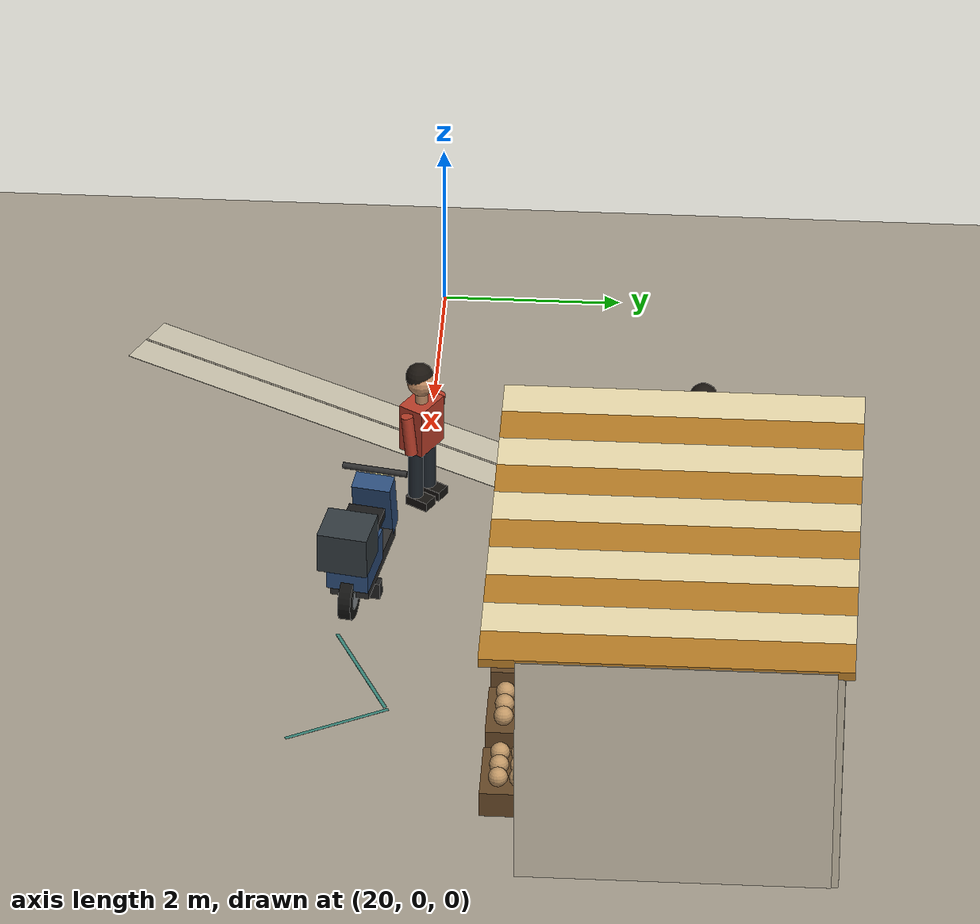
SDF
<sdf version="1.10">
 <world name="swan_market">
  <model name="ground">
   <static>true</static>
   <pose>15 0 -0.1 0 0 0</pose>
   <link name="body">
    <collision name="box_collision"><geometry><box><size>46 24 0.2</size></box></geometry></collision>
    <visual name="box_visual">
     <geometry><box><size>46 24 0.2</size></box></geometry>
     <material><ambient>0.64 0.61 0.55 1</ambient><diffuse>0.64 0.61 0.55 1</diffuse></material>
    </visual>
   </link>
  </model>
  <model name="market_paving_48">
   <static>true</static>
   <pose>22.25 -1.0326 0.002 0 0 -0.48375</pose>
   <link name="body">
    <visual name="box_visual">
     <geometry><box><size>0.75 5.2 0.004</size></box></geometry>
     <material><ambient>0.79 0.76 0.68 1</ambient><diffuse>0.79 0.76 0.68 1</diffuse></material>
    </visual>
   </link>
  </model>
  <model name="paving_joint_48">
   <static>true</static>
   <pose>22.25 -1.0326 0.0045 0 0 -0.48375</pose>
   <link name="body">
    <visual name="box_visual">
     <geometry><box><size>0.025 5.2 0.001</size></box></geometry>
     <material><ambient>0.67 0.64 0.57 1</ambient><diffuse>0.67 0.64 0.57 1</diffuse></material>
    </visual>
   </link>
  </model>
  <model name="stall_03">
   <static>true</static>
   <pose>28 3.0211 0 0 0 0</pose>
   <link name="body">
    <collision name="rear_collision">
     <pose>0 1.65 1.4 0 0 0</pose>
     <geometry><box><size>4.8 0.15 2.8</size></box></geometry>
    </collision>
    <visual name="rear_visual">
     <pose>0 1.65 1.4 0 0 0</pose>
     <geometry><box><size>4.8 0.15 2.8</size></box></geometry>
     <material><ambient>0.78 0.74 0.65 1</ambient><diffuse>0.78 0.74 0.65 1</diffuse></material>
    </visual>
    <collision name="side_-2.35_collision">
     <pose>-2.35 0 1.4 0 0 0</pose>
     <geometry><box><size>0.12 3.3 2.8</size></box></geometry>
    </collision>
    <visual name="side_-2.35_visual">
     <pose>-2.35 0 1.4 0 0 0</pose>
     <geometry><box><size>0.12 3.3 2.8</size></box></geometry>
     <material><ambient>0.81 0.77 0.69 1</ambient><diffuse>0.81 0.77 0.69 1</diffuse></material>
    </visual>
    <collision name="side_2.35_collision">
     <pose>2.35 0 1.4 0 0 0</pose>
     <geometry><box><size>0.12 3.3 2.8</size></box></geometry>
    </collision>
    <visual name="side_2.35_visual">
     <pose>2.35 0 1.4 0 0 0</pose>
     <geometry><box><size>0.12 3.3 2.8</size></box></geometry>
     <material><ambient>0.81 0.77 0.69 1</ambient><diffuse>0.81 0.77 0.69 1</diffuse></material>
    </visual>
    <collision name="counter_collision">
     <pose>0 -1.22 0.4 0 0 0</pose>
     <geometry><box><size>3.5 0.85 0.8</size></box></geometry>
    </collision>
    <visual name="counter_visual">
     <pose>0 -1.22 0.4 0 0 0</pose>
     <geometry><box><size>3.5 0.85 0.8</size></box></geometry>
     <material><ambient>0.47 0.32 0.21 1</ambient><diffuse>0.47 0.32 0.21 1</diffuse></material>
    </visual>
    <collision name="counter_top_collision">
     <pose>0 -1.22 0.83 0 0 0</pose>
     <geometry><box><size>3.6 0.95 0.06</size></box></geometry>
    </collision>
    <visual name="counter_top_visual">
     <pose>0 -1.22 0.83 0 0 0</pose>
     <geometry><box><size>3.6 0.95 0.06</size></box></geometry>
     <material><ambient>0.86 0.77 0.59 1</ambient><diffuse>0.86 0.77 0.59 1</diffuse></material>
    </visual>
    <collision name="awning_0_collision">
     <pose>-2.16 -0.1 2.78 0 0 0</pose>
     <geometry><box><size>0.48 3.85 0.1</size></box></geometry>
    </collision>
    <visual name="awning_0_visual">
     <pose>-2.16 -0.1 2.78 0 0 0</pose>
     <geometry><box><size>0.48 3.85 0.1</size></box></geometry>
     <material><ambient>0.92 0.86 0.68 1</ambient><diffuse>0.92 0.86 0.68 1</diffuse></material>
    </visual>
    <collision name="awning_1_collision">
     <pose>-1.68 -0.1 2.78 0 0 0</pose>
     <geometry><box><size>0.48 3.85 0.1</size></box></geometry>
    </collision>
    <visual name="awning_1_visual">
     <pose>-1.68 -0.1 2.78 0 0 0</pose>
     <geometry><box><size>0.48 3.85 0.1</size></box></geometry>
     <material><ambient>0.72 0.49 0.15 1</ambient><diffuse>0.72 0.49 0.15 1</diffuse></material>
    </visual>
    <collision name="awning_2_collision">
     <pose>-1.2 -0.1 2.78 0 0 0</pose>
     <geometry><box><size>0.48 3.85 0.1</size></box></geometry>
    </collision>
    <visual name="awning_2_visual">
     <pose>-1.2 -0.1 2.78 0 0 0</pose>
     <geometry><box><size>0.48 3.85 0.1</size></box></geometry>
     <material><ambient>0.92 0.86 0.68 1</ambient><diffuse>0.92 0.86 0.68 1</diffuse></material>
    </visual>
    <collision name="awning_3_collision">
     <pose>-0.72 -0.1 2.78 0 0 0</pose>
     <geometry><box><size>0.48 3.85 0.1</size></box></geometry>
    </collision>
    <visual name="awning_3_visual">
     <pose>-0.72 -0.1 2.78 0 0 0</pose>
     <geometry><box><size>0.48 3.85 0.1</size></box></geometry>
     <material><ambient>0.72 0.49 0.15 1</ambient><diffuse>0.72 0.49 0.15 1</diffuse></material>
    </visual>
    <collision name="awning_4_collision">
     <pose>-0.24 -0.1 2.78 0 0 0</pose>
     <geometry><box><size>0.48 3.85 0.1</size></box></geometry>
    </collision>
    <visual name="awning_4_visual">
     <pose>-0.24 -0.1 2.78 0 0 0</pose>
     <geometry><box><size>0.48 3.85 0.1</size></box></geometry>
     <material><ambient>0.92 0.86 0.68 1</ambient><diffuse>0.92 0.86 0.68 1</diffuse></material>
    </visual>
    <collision name="awning_5_collision">
     <pose>0.24 -0.1 2.78 0 0 0</pose>
     <geometry><box><size>0.48 3.85 0.1</size></box></geometry>
    </collision>
    <visual name="awning_5_visual">
     <pose>0.24 -0.1 2.78 0 0 0</pose>
     <geometry><box><size>0.48 3.85 0.1</size></box></geometry>
     <material><ambient>0.72 0.49 0.15 1</ambient><diffuse>0.72 0.49 0.15 1</diffuse></material>
    </visual>
    <collision name="awning_6_collision">
     <pose>0.72 -0.1 2.78 0 0 0</pose>
     <geometry><box><size>0.48 3.85 0.1</size></box></geometry>
    </collision>
    <visual name="awning_6_visual">
     <pose>0.72 -0.1 2.78 0 0 0</pose>
     <geometry><box><size>0.48 3.85 0.1</size></box></geometry>
     <material><ambient>0.92 0.86 0.68 1</ambient><diffuse>0.92 0.86 0.68 1</diffuse></material>
    </visual>
    <collision name="awning_7_collision">
     <pose>1.2 -0.1 2.78 0 0 0</pose>
     <geometry><box><size>0.48 3.85 0.1</size></box></geometry>
    </collision>
    <visual name="awning_7_visual">
     <pose>1.2 -0.1 2.78 0 0 0</pose>
     <geometry><box><size>0.48 3.85 0.1</size></box></geometry>
     <material><ambient>0.72 0.49 0.15 1</ambient><diffuse>0.72 0.49 0.15 1</diffuse></material>
    </visual>
    <collision name="awning_8_collision">
     <pose>1.68 -0.1 2.78 0 0 0</pose>
     <geometry><box><size>0.48 3.85 0.1</size></box></geometry>
    </collision>
    <visual name="awning_8_visual">
     <pose>1.68 -0.1 2.78 0 0 0</pose>
     <geometry><box><size>0.48 3.85 0.1</size></box></geometry>
     <material><ambient>0.92 0.86 0.68 1</ambient><diffuse>0.92 0.86 0.68 1</diffuse></material>
    </visual>
    <collision name="awning_9_collision">
     <pose>2.16 -0.1 2.78 0 0 0</pose>
     <geometry><box><size>0.48 3.85 0.1</size></box></geometry>
    </collision>
    <visual name="awning_9_visual">
     <pose>2.16 -0.1 2.78 0 0 0</pose>
     <geometry><box><size>0.48 3.85 0.1</size></box></geometry>
     <material><ambient>0.72 0.49 0.15 1</ambient><diffuse>0.72 0.49 0.15 1</diffuse></material>
    </visual>
    <collision name="crate_-1_collision">
     <pose>-1.04 -1.77 0.15 0 0 0</pose>
     <geometry><box><size>0.78 0.6 0.3</size></box></geometry>
    </collision>
    <visual name="crate_-1_visual">
     <pose>-1.04 -1.77 0.15 0 0 0</pose>
     <geometry><box><size>0.78 0.6 0.3</size></box></geometry>
     <material><ambient>0.4 0.28 0.15 1</ambient><diffuse>0.4 0.28 0.15 1</diffuse></material>
    </visual>
    <visual name="produce_-1_0_visual">
     <pose>-1.25 -1.88 0.39 0 0 0</pose>
     <geometry><sphere><radius>0.105</radius></sphere></geometry>
     <material><ambient>0.74 0.58 0.39 1</ambient><diffuse>0.74 0.58 0.39 1</diffuse></material>
    </visual>
    <visual name="produce_-1_1_visual">
     <pose>-1.04 -1.88 0.39 0 0 0</pose>
     <geometry><sphere><radius>0.105</radius></sphere></geometry>
     <material><ambient>0.74 0.58 0.39 1</ambient><diffuse>0.74 0.58 0.39 1</diffuse></material>
    </visual>
    <visual name="produce_-1_2_visual">
     <pose>-0.83 -1.88 0.39 0 0 0</pose>
     <geometry><sphere><radius>0.105</radius></sphere></geometry>
     <material><ambient>0.74 0.58 0.39 1</ambient><diffuse>0.74 0.58 0.39 1</diffuse></material>
    </visual>
    <visual name="produce_-1_3_visual">
     <pose>-1.25 -1.66 0.39 0 0 0</pose>
     <geometry><sphere><radius>0.105</radius></sphere></geometry>
     <material><ambient>0.74 0.58 0.39 1</ambient><diffuse>0.74 0.58 0.39 1</diffuse></material>
    </visual>
    <visual name="produce_-1_4_visual">
     <pose>-1.04 -1.66 0.39 0 0 0</pose>
     <geometry><sphere><radius>0.105</radius></sphere></geometry>
     <material><ambient>0.74 0.58 0.39 1</ambient><diffuse>0.74 0.58 0.39 1</diffuse></material>
    </visual>
    <visual name="produce_-1_5_visual">
     <pose>-0.83 -1.66 0.39 0 0 0</pose>
     <geometry><sphere><radius>0.105</radius></sphere></geometry>
     <material><ambient>0.74 0.58 0.39 1</ambient><diffuse>0.74 0.58 0.39 1</diffuse></material>
    </visual>
    <collision name="crate_0_collision">
     <pose>0 -1.77 0.15 0 0 0</pose>
     <geometry><box><size>0.78 0.6 0.3</size></box></geometry>
    </collision>
    <visual name="crate_0_visual">
     <pose>0 -1.77 0.15 0 0 0</pose>
     <geometry><box><size>0.78 0.6 0.3</size></box></geometry>
     <material><ambient>0.4 0.28 0.15 1</ambient><diffuse>0.4 0.28 0.15 1</diffuse></material>
    </visual>
    <visual name="produce_0_0_visual">
     <pose>-0.21 -1.88 0.39 0 0 0</pose>
     <geometry><sphere><radius>0.105</radius></sphere></geometry>
     <material><ambient>0.74 0.58 0.39 1</ambient><diffuse>0.74 0.58 0.39 1</diffuse></material>
    </visual>
    <visual name="produce_0_1_visual">
     <pose>0 -1.88 0.39 0 0 0</pose>
     <geometry><sphere><radius>0.105</radius></sphere></geometry>
     <material><ambient>0.74 0.58 0.39 1</ambient><diffuse>0.74 0.58 0.39 1</diffuse></material>
    </visual>
    <visual name="produce_0_2_visual">
     <pose>0.21 -1.88 0.39 0 0 0</pose>
     <geometry><sphere><radius>0.105</radius></sphere></geometry>
     <material><ambient>0.74 0.58 0.39 1</ambient><diffuse>0.74 0.58 0.39 1</diffuse></material>
    </visual>
    <visual name="produce_0_3_visual">
     <pose>-0.21 -1.66 0.39 0 0 0</pose>
     <geometry><sphere><radius>0.105</radius></sphere></geometry>
     <material><ambient>0.74 0.58 0.39 1</ambient><diffuse>0.74 0.58 0.39 1</diffuse></material>
    </visual>
    <visual name="produce_0_4_visual">
     <pose>0 -1.66 0.39 0 0 0</pose>
     <geometry><sphere><radius>0.105</radius></sphere></geometry>
     <material><ambient>0.74 0.58 0.39 1</ambient><diffuse>0.74 0.58 0.39 1</diffuse></material>
    </visual>
    <visual name="produce_0_5_visual">
     <pose>0.21 -1.66 0.39 0 0 0</pose>
     <geometry><sphere><radius>0.105</radius></sphere></geometry>
     <material><ambient>0.74 0.58 0.39 1</ambient><diffuse>0.74 0.58 0.39 1</diffuse></material>
    </visual>
    <collision name="crate_1_collision">
     <pose>1.04 -1.77 0.15 0 0 0</pose>
     <geometry><box><size>0.78 0.6 0.3</size></box></geometry>
    </collision>
    <visual name="crate_1_visual">
     <pose>1.04 -1.77 0.15 0 0 0</pose>
     <geometry><box><size>0.78 0.6 0.3</size></box></geometry>
     <material><ambient>0.4 0.28 0.15 1</ambient><diffuse>0.4 0.28 0.15 1</diffuse></material>
    </visual>
    <visual name="produce_1_0_visual">
     <pose>0.83 -1.88 0.39 0 0 0</pose>
     <geometry><sphere><radius>0.105</radius></sphere></geometry>
     <material><ambient>0.74 0.58 0.39 1</ambient><diffuse>0.74 0.58 0.39 1</diffuse></material>
    </visual>
    <visual name="produce_1_1_visual">
     <pose>1.04 -1.88 0.39 0 0 0</pose>
     <geometry><sphere><radius>0.105</radius></sphere></geometry>
     <material><ambient>0.74 0.58 0.39 1</ambient><diffuse>0.74 0.58 0.39 1</diffuse></material>
    </visual>
    <visual name="produce_1_2_visual">
     <pose>1.25 -1.88 0.39 0 0 0</pose>
     <geometry><sphere><radius>0.105</radius></sphere></geometry>
     <material><ambient>0.74 0.58 0.39 1</ambient><diffuse>0.74 0.58 0.39 1</diffuse></material>
    </visual>
    <visual name="produce_1_3_visual">
     <pose>0.83 -1.66 0.39 0 0 0</pose>
     <geometry><sphere><radius>0.105</radius></sphere></geometry>
     <material><ambient>0.74 0.58 0.39 1</ambient><diffuse>0.74 0.58 0.39 1</diffuse></material>
    </visual>
    <visual name="produce_1_4_visual">
     <pose>1.04 -1.66 0.39 0 0 0</pose>
     <geometry><sphere><radius>0.105</radius></sphere></geometry>
     <material><ambient>0.74 0.58 0.39 1</ambient><diffuse>0.74 0.58 0.39 1</diffuse></material>
    </visual>
    <visual name="produce_1_5_visual">
     <pose>1.25 -1.66 0.39 0 0 0</pose>
     <geometry><sphere><radius>0.105</radius></sphere></geometry>
     <material><ambient>0.74 0.58 0.39 1</ambient><diffuse>0.74 0.58 0.39 1</diffuse></material>
    </visual>
   </link>
  </model>
  <model name="vendor_2">
   <static>true</static>
   <pose>24.024 3.06 0 0 0 -2.0431</pose>
   <link name="body">
    <collision name="leg_-1_collision">
     <pose>0 -0.12 0.4 0 0 0</pose>
     <geometry><cylinder><radius>0.085</radius><length>0.68</length></cylinder></geometry>
    </collision>
    <visual name="leg_-1_visual">
     <pose>0 -0.12 0.4 0 0 0</pose>
     <geometry><cylinder><radius>0.085</radius><length>0.68</length></cylinder></geometry>
     <material><ambient>0.12 0.15 0.18 1</ambient><diffuse>0.12 0.15 0.18 1</diffuse></material>
    </visual>
    <collision name="shoe_-1_collision">
     <pose>0.06 -0.12 0.055 0 0 0</pose>
     <geometry><box><size>0.28 0.17 0.11</size></box></geometry>
    </collision>
    <visual name="shoe_-1_visual">
     <pose>0.06 -0.12 0.055 0 0 0</pose>
     <geometry><box><size>0.28 0.17 0.11</size></box></geometry>
     <material><ambient>0.08 0.07 0.06 1</ambient><diffuse>0.08 0.07 0.06 1</diffuse></material>
    </visual>
    <collision name="arm_-1_collision">
     <pose>0.02 -0.27 1.02 0 -0.12 0</pose>
     <geometry><cylinder><radius>0.068</radius><length>0.48</length></cylinder></geometry>
    </collision>
    <visual name="arm_-1_visual">
     <pose>0.02 -0.27 1.02 0 -0.12 0</pose>
     <geometry><cylinder><radius>0.068</radius><length>0.48</length></cylinder></geometry>
     <material><ambient>0.79 0.69 0.48 1</ambient><diffuse>0.79 0.69 0.48 1</diffuse></material>
    </visual>
    <collision name="leg_1_collision">
     <pose>0 0.12 0.4 0 0 0</pose>
     <geometry><cylinder><radius>0.085</radius><length>0.68</length></cylinder></geometry>
    </collision>
    <visual name="leg_1_visual">
     <pose>0 0.12 0.4 0 0 0</pose>
     <geometry><cylinder><radius>0.085</radius><length>0.68</length></cylinder></geometry>
     <material><ambient>0.12 0.15 0.18 1</ambient><diffuse>0.12 0.15 0.18 1</diffuse></material>
    </visual>
    <collision name="shoe_1_collision">
     <pose>0.06 0.12 0.055 0 0 0</pose>
     <geometry><box><size>0.28 0.17 0.11</size></box></geometry>
    </collision>
    <visual name="shoe_1_visual">
     <pose>0.06 0.12 0.055 0 0 0</pose>
     <geometry><box><size>0.28 0.17 0.11</size></box></geometry>
     <material><ambient>0.08 0.07 0.06 1</ambient><diffuse>0.08 0.07 0.06 1</diffuse></material>
    </visual>
    <collision name="arm_1_collision">
     <pose>0.02 0.27 1.02 0 0.12 0</pose>
     <geometry><cylinder><radius>0.068</radius><length>0.48</length></cylinder></geometry>
    </collision>
    <visual name="arm_1_visual">
     <pose>0.02 0.27 1.02 0 0.12 0</pose>
     <geometry><cylinder><radius>0.068</radius><length>0.48</length></cylinder></geometry>
     <material><ambient>0.79 0.69 0.48 1</ambient><diffuse>0.79 0.69 0.48 1</diffuse></material>
    </visual>
    <collision name="torso_collision">
     <pose>0 0 1.02 0 0 0</pose>
     <geometry><box><size>0.3 0.43 0.58</size></box></geometry>
    </collision>
    <visual name="torso_visual">
     <pose>0 0 1.02 0 0 0</pose>
     <geometry><box><size>0.3 0.43 0.58</size></box></geometry>
     <material><ambient>0.79 0.69 0.48 1</ambient><diffuse>0.79 0.69 0.48 1</diffuse></material>
    </visual>
    <visual name="neck_visual">
     <pose>0 0 1.37 0 0 0</pose>
     <geometry><cylinder><radius>0.07</radius><length>0.13</length></cylinder></geometry>
     <material><ambient>0.77 0.56 0.4 1</ambient><diffuse>0.77 0.56 0.4 1</diffuse></material>
    </visual>
    <collision name="head_collision">
     <pose>0 0 1.57 0 0 0</pose>
     <geometry><sphere><radius>0.16</radius></sphere></geometry>
    </collision>
    <visual name="head_visual">
     <pose>0 0 1.57 0 0 0</pose>
     <geometry><sphere><radius>0.16</radius></sphere></geometry>
     <material><ambient>0.77 0.56 0.4 1</ambient><diffuse>0.77 0.56 0.4 1</diffuse></material>
    </visual>
    <visual name="hair_visual">
     <pose>-0.025 0 1.63 0 0 0</pose>
     <geometry><sphere><radius>0.155</radius></sphere></geometry>
     <material><ambient>0.1 0.08 0.06 1</ambient><diffuse>0.1 0.08 0.06 1</diffuse></material>
    </visual>
   </link>
  </model>
  <model name="motorcycle_parked">
   <static>true</static>
   <pose>25.448 -0.54924 0 0 0 2.9627</pose>
   <link name="body">
    <collision name="tire_0_collision">
     <pose>-0.61 0 0.25 1.5708 0 0</pose>
     <geometry><cylinder><radius>0.25</radius><length>0.14</length></cylinder></geometry>
    </collision>
    <visual name="tire_0_visual">
     <pose>-0.61 0 0.25 1.5708 0 0</pose>
     <geometry><cylinder><radius>0.25</radius><length>0.14</length></cylinder></geometry>
     <material><ambient>0.075 0.075 0.07 1</ambient><diffuse>0.075 0.075 0.07 1</diffuse></material>
    </visual>
    <visual name="hub_0_visual">
     <pose>-0.61 0 0.25 1.5708 0 0</pose>
     <geometry><cylinder><radius>0.13</radius><length>0.145</length></cylinder></geometry>
     <material><ambient>0.57 0.59 0.6 1</ambient><diffuse>0.57 0.59 0.6 1</diffuse></material>
    </visual>
    <collision name="tire_1_collision">
     <pose>0.62 0 0.25 1.5708 0 0</pose>
     <geometry><cylinder><radius>0.25</radius><length>0.14</length></cylinder></geometry>
    </collision>
    <visual name="tire_1_visual">
     <pose>0.62 0 0.25 1.5708 0 0</pose>
     <geometry><cylinder><radius>0.25</radius><length>0.14</length></cylinder></geometry>
     <material><ambient>0.075 0.075 0.07 1</ambient><diffuse>0.075 0.075 0.07 1</diffuse></material>
    </visual>
    <visual name="hub_1_visual">
     <pose>0.62 0 0.25 1.5708 0 0</pose>
     <geometry><cylinder><radius>0.13</radius><length>0.145</length></cylinder></geometry>
     <material><ambient>0.57 0.59 0.6 1</ambient><diffuse>0.57 0.59 0.6 1</diffuse></material>
    </visual>
    <collision name="deck_collision">
     <pose>0 0 0.33 0 0 0</pose>
     <geometry><box><size>1.2 0.43 0.17</size></box></geometry>
    </collision>
    <visual name="deck_visual">
     <pose>0 0 0.33 0 0 0</pose>
     <geometry><box><size>1.2 0.43 0.17</size></box></geometry>
     <material><ambient>0.18 0.18 0.18 1</ambient><diffuse>0.18 0.18 0.18 1</diffuse></material>
    </visual>
    <collision name="rear_body_collision">
     <pose>-0.36 0 0.59 0 0 0</pose>
     <geometry><box><size>0.65 0.46 0.4</size></box></geometry>
    </collision>
    <visual name="rear_body_visual">
     <pose>-0.36 0 0.59 0 0 0</pose>
     <geometry><box><size>0.65 0.46 0.4</size></box></geometry>
     <material><ambient>0.17 0.3 0.48 1</ambient><diffuse>0.17 0.3 0.48 1</diffuse></material>
    </visual>
    <collision name="seat_collision">
     <pose>-0.2 0 0.83 0 0 0</pose>
     <geometry><box><size>0.8 0.4 0.12</size></box></geometry>
    </collision>
    <visual name="seat_visual">
     <pose>-0.2 0 0.83 0 0 0</pose>
     <geometry><box><size>0.8 0.4 0.12</size></box></geometry>
     <material><ambient>0.1 0.1 0.1 1</ambient><diffuse>0.1 0.1 0.1 1</diffuse></material>
    </visual>
    <collision name="front_fairing_collision">
     <pose>0.53 0 0.69 0 -0.2 0</pose>
     <geometry><box><size>0.23 0.43 0.69</size></box></geometry>
    </collision>
    <visual name="front_fairing_visual">
     <pose>0.53 0 0.69 0 -0.2 0</pose>
     <geometry><box><size>0.23 0.43 0.69</size></box></geometry>
     <material><ambient>0.17 0.3 0.48 1</ambient><diffuse>0.17 0.3 0.48 1</diffuse></material>
    </visual>
    <collision name="handlebar_collision">
     <pose>0.56 0 1.12 1.5708 0 0</pose>
     <geometry><cylinder><radius>0.035</radius><length>0.72</length></cylinder></geometry>
    </collision>
    <visual name="handlebar_visual">
     <pose>0.56 0 1.12 1.5708 0 0</pose>
     <geometry><cylinder><radius>0.035</radius><length>0.72</length></cylinder></geometry>
     <material><ambient>0.18 0.18 0.18 1</ambient><diffuse>0.18 0.18 0.18 1</diffuse></material>
    </visual>
    <visual name="headlight_visual">
     <pose>0.7 0 0.94 0 0 0</pose>
     <geometry><sphere><radius>0.095</radius></sphere></geometry>
     <material><ambient>0.96 0.92 0.66 1</ambient><diffuse>0.96 0.92 0.66 1</diffuse></material>
    </visual>
    <collision name="delivery_box_collision">
     <pose>-0.65 0 1.01 0 0 0</pose>
     <geometry><box><size>0.51 0.55 0.48</size></box></geometry>
    </collision>
    <visual name="delivery_box_visual">
     <pose>-0.65 0 1.01 0 0 0</pose>
     <geometry><box><size>0.51 0.55 0.48</size></box></geometry>
     <material><ambient>0.2 0.23 0.25 1</ambient><diffuse>0.2 0.23 0.25 1</diffuse></material>
    </visual>
    <collision name="stand_collision">
     <pose>-0.2 0 0.1 0 0 0</pose>
     <geometry><box><size>0.12 0.5 0.2</size></box></geometry>
    </collision>
    <visual name="stand_visual">
     <pose>-0.2 0 0.1 0 0 0</pose>
     <geometry><box><size>0.12 0.5 0.2</size></box></geometry>
     <material><ambient>0.12 0.12 0.12 1</ambient><diffuse>0.12 0.12 0.12 1</diffuse></material>
    </visual>
   </link>
  </model>
  <model name="crowd_08">
   <static>true</static>
   <pose>23.851 -0.011381 0 0 0 1.0273</pose>
   <link name="body">
    <collision name="leg_-1_collision">
     <pose>0 -0.12 0.4 0 0 0</pose>
     <geometry><cylinder><radius>0.085</radius><length>0.68</length></cylinder></geometry>
    </collision>
    <visual name="leg_-1_visual">
     <pose>0 -0.12 0.4 0 0 0</pose>
     <geometry><cylinder><radius>0.085</radius><length>0.68</length></cylinder></geometry>
     <material><ambient>0.12 0.15 0.18 1</ambient><diffuse>0.12 0.15 0.18 1</diffuse></material>
    </visual>
    <collision name="shoe_-1_collision">
     <pose>0.06 -0.12 0.055 0 0 0</pose>
     <geometry><box><size>0.28 0.17 0.11</size></box></geometry>
    </collision>
    <visual name="shoe_-1_visual">
     <pose>0.06 -0.12 0.055 0 0 0</pose>
     <geometry><box><size>0.28 0.17 0.11</size></box></geometry>
     <material><ambient>0.08 0.07 0.06 1</ambient><diffuse>0.08 0.07 0.06 1</diffuse></material>
    </visual>
    <collision name="arm_-1_collision">
     <pose>0.02 -0.27 1.02 0 -0.12 0</pose>
     <geometry><cylinder><radius>0.068</radius><length>0.48</length></cylinder></geometry>
    </collision>
    <visual name="arm_-1_visual">
     <pose>0.02 -0.27 1.02 0 -0.12 0</pose>
     <geometry><cylinder><radius>0.068</radius><length>0.48</length></cylinder></geometry>
     <material><ambient>0.72 0.24 0.16 1</ambient><diffuse>0.72 0.24 0.16 1</diffuse></material>
    </visual>
    <collision name="leg_1_collision">
     <pose>0 0.12 0.4 0 0 0</pose>
     <geometry><cylinder><radius>0.085</radius><length>0.68</length></cylinder></geometry>
    </collision>
    <visual name="leg_1_visual">
     <pose>0 0.12 0.4 0 0 0</pose>
     <geometry><cylinder><radius>0.085</radius><length>0.68</length></cylinder></geometry>
     <material><ambient>0.12 0.15 0.18 1</ambient><diffuse>0.12 0.15 0.18 1</diffuse></material>
    </visual>
    <collision name="shoe_1_collision">
     <pose>0.06 0.12 0.055 0 0 0</pose>
     <geometry><box><size>0.28 0.17 0.11</size></box></geometry>
    </collision>
    <visual name="shoe_1_visual">
     <pose>0.06 0.12 0.055 0 0 0</pose>
     <geometry><box><size>0.28 0.17 0.11</size></box></geometry>
     <material><ambient>0.08 0.07 0.06 1</ambient><diffuse>0.08 0.07 0.06 1</diffuse></material>
    </visual>
    <collision name="arm_1_collision">
     <pose>0.02 0.27 1.02 0 0.12 0</pose>
     <geometry><cylinder><radius>0.068</radius><length>0.48</length></cylinder></geometry>
    </collision>
    <visual name="arm_1_visual">
     <pose>0.02 0.27 1.02 0 0.12 0</pose>
     <geometry><cylinder><radius>0.068</radius><length>0.48</length></cylinder></geometry>
     <material><ambient>0.72 0.24 0.16 1</ambient><diffuse>0.72 0.24 0.16 1</diffuse></material>
    </visual>
    <collision name="torso_collision">
     <pose>0 0 1.02 0 0 0</pose>
     <geometry><box><size>0.3 0.43 0.58</size></box></geometry>
    </collision>
    <visual name="torso_visual">
     <pose>0 0 1.02 0 0 0</pose>
     <geometry><box><size>0.3 0.43 0.58</size></box></geometry>
     <material><ambient>0.72 0.24 0.16 1</ambient><diffuse>0.72 0.24 0.16 1</diffuse></material>
    </visual>
    <visual name="neck_visual">
     <pose>0 0 1.37 0 0 0</pose>
     <geometry><cylinder><radius>0.07</radius><length>0.13</length></cylinder></geometry>
     <material><ambient>0.77 0.56 0.4 1</ambient><diffuse>0.77 0.56 0.4 1</diffuse></material>
    </visual>
    <collision name="head_collision">
     <pose>0 0 1.57 0 0 0</pose>
     <geometry><sphere><radius>0.16</radius></sphere></geometry>
    </collision>
    <visual name="head_visual">
     <pose>0 0 1.57 0 0 0</pose>
     <geometry><sphere><radius>0.16</radius></sphere></geometry>
     <material><ambient>0.77 0.56 0.4 1</ambient><diffuse>0.77 0.56 0.4 1</diffuse></material>
    </visual>
    <visual name="hair_visual">
     <pose>-0.025 0 1.63 0 0 0</pose>
     <geometry><sphere><radius>0.155</radius></sphere></geometry>
     <material><ambient>0.1 0.08 0.06 1</ambient><diffuse>0.1 0.08 0.06 1</diffuse></material>
    </visual>
   </link>
  </model>
  <model name="stop_1_0.7_0">
   <static>true</static>
   <pose>27.972 -0.65294 0.009 0 0 0.4879</pose>
   <link name="body">
    <visual name="box_visual">
     <geometry><box><size>0.04 1.2 0.002</size></box></geometry>
     <material><ambient>0.22 0.52 0.47 1</ambient><diffuse>0.22 0.52 0.47 1</diffuse></material>
    </visual>
   </link>
  </model>
  <model name="stop_1_0_0.6">
   <static>true</static>
   <pose>27.036 -0.45861 0.009 0 0 0.44903</pose>
   <link name="body">
    <visual name="box_visual">
     <geometry><box><size>1.4 0.04 0.002</size></box></geometry>
     <material><ambient>0.22 0.52 0.47 1</ambient><diffuse>0.22 0.52 0.47 1</diffuse></material>
    </visual>
   </link>
  </model>
 </world>
</sdf>
